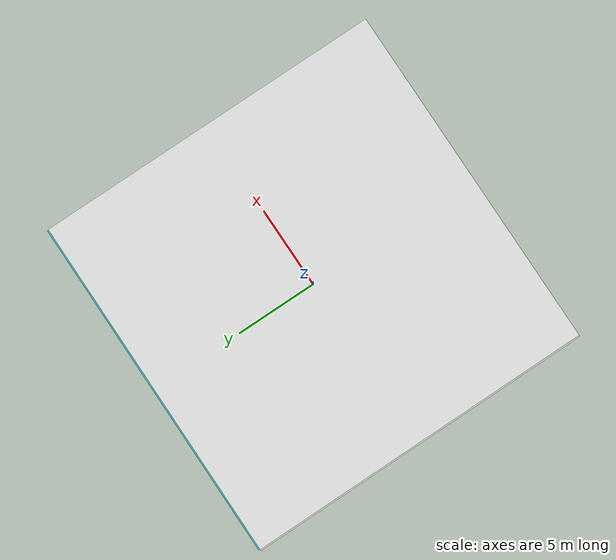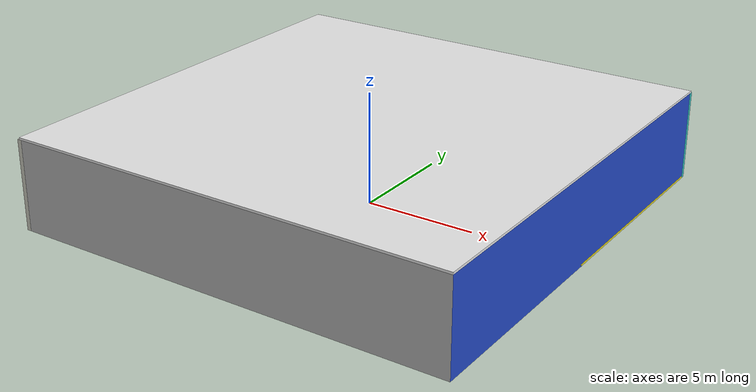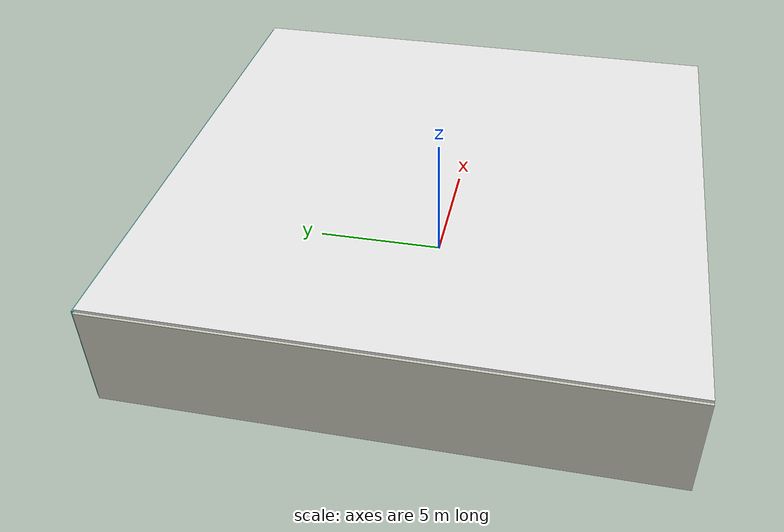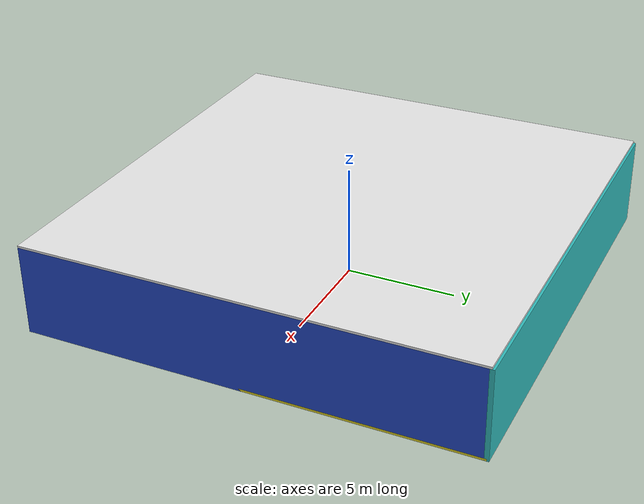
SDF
<sdf version="1.4">
 <world name="default">
  <physics type="ode">
   <max_step_size>0.001</max_step_size>
   <real_time_factor>1</real_time_factor>
   <real_time_update_rate>1000</real_time_update_rate>
   <gravity>0 0 -9.8</gravity>
  </physics>
  <scene><ambient>0.4 0.4 0.4 1</ambient><background>0.7 0.7 0.7 1</background><shadows>1</shadows></scene>
  <model name="Surrounding">
   <static>1</static>
   <link name="Ceiling">
    <collision name="Ceiling_Collision"><geometry><box><size>20 20 0.1</size></box></geometry></collision>
    <visual name="Ceiling_Visual">
     <geometry><box><size>20 20 0.1</size></box></geometry>
     <material>
      <script><uri>file://media/materials/scripts/gazebo.material</uri><name>Gazebo/White</name></script>
     </material>
    </visual>
    <pose>0 0 4.05 0 0 0</pose>
   </link>
   <link name="Wall_South">
    <collision name="Wall_South_Collision">
     <geometry><box><size>20 0 4</size></box></geometry>
     <pose>0 0 2 0 -0 0</pose>
    </collision>
    <visual name="Wall_South_Visual">
     <pose>0 0 2 0 -0 0</pose>
     <geometry><box><size>20 0 4</size></box></geometry>
     <material>
      <script><uri>file://media/materials/scripts/gazebo.material</uri><name>Gazebo/PioneerBody</name></script>
     </material>
    </visual>
    <velocity_decay><linear>0</linear><angular>0</angular></velocity_decay>
    <pose>0 -10 0 0 -0 0</pose>
   </link>
   <link name="Wall_East">
    <collision name="Wall_21_Collision">
     <geometry><box><size>20 0 4</size></box></geometry>
     <pose>0 0 2 0 -0 0</pose>
    </collision>
    <visual name="Wall_21_Visual">
     <pose>0 0 2 0 -0 0</pose>
     <geometry><box><size>20 0 4</size></box></geometry>
     <material>
      <script><uri>file://media/materials/scripts/gazebo.material</uri><name>Gazebo/BlueGlow</name></script>
     </material>
    </visual>
    <velocity_decay><linear>0</linear><angular>0</angular></velocity_decay>
    <pose>10 0 0 0 -0 1.5708</pose>
   </link>
   <link name="Wall_North">
    <collision name="Wall_22_Collision">
     <geometry><box><size>20 0.2 4</size></box></geometry>
     <pose>0 0 2 0 -0 0</pose>
    </collision>
    <visual name="Wall_22_Visual">
     <pose>0 0 2 0 -0 0</pose>
     <geometry><box><size>20 0.2 4</size></box></geometry>
     <material>
      <script><uri>file://media/materials/scripts/gazebo.material</uri><name>Gazebo/TurquoiseGlow</name></script>
     </material>
    </visual>
    <velocity_decay><linear>0</linear><angular>0</angular></velocity_decay>
    <pose>0 10 0 0 -0 0</pose>
   </link>
   <link name="Wall_West">
    <collision name="Wall_23_Collision">
     <geometry><box><size>20 0.2 4</size></box></geometry>
     <pose>0 0 2 0 -0 0</pose>
    </collision>
    <visual name="Wall_23_Visual">
     <pose>0 0 2 0 -0 0</pose>
     <geometry><box><size>20 0.2 4</size></box></geometry>
     <material>
      <script><uri>file://media/materials/scripts/gazebo.material</uri><name>Gazebo/PaintedWall</name></script>
     </material>
    </visual>
    <velocity_decay><linear>0</linear><angular>0</angular></velocity_decay>
    <pose>-10 0 0 0 0 -1.5708</pose>
   </link>
   <link name="Ground_link">
    <collision name="collision">
     <pose>0 0 .05 0 -0 0</pose>
     <geometry><box><size>20 20 0.1</size></box></geometry>
    </collision>
    <visual name="visual">
     <pose>0 0 .05 0 -0 0</pose>
     <geometry><box><size>20 20 0.1</size></box></geometry>
     <material>
      <script><uri>file://media/materials/scripts/gazebo.material</uri><name>Gazebo/Yellow</name></script>
     </material>
    </visual>
   </link>
   <static>1</static>
  </model>
  <spherical_coordinates>
   <surface_model>EARTH_WGS84</surface_model>
   <latitude_deg>0</latitude_deg>
   <longitude_deg>0</longitude_deg>
   <elevation>0</elevation>
   <heading_deg>0</heading_deg>
  </spherical_coordinates>
  <light name="lightball_0" type="diffuse">
   <diffuse>0.8 0.8 0.8 1</diffuse>
   <specular>0.2 0.2 0.2 1</specular>
   <attenuation>
    <range>100</range>
    <constant>0.7</constant>
    <linear>0.01</linear>
    <quadratic>0.001</quadratic>
   </attenuation>
   <direction>-0.5 0.1 -0.9</direction>
   <pose>1.44523436461 8.0069053226 3.54685957813 0 0 0</pose>
  </light>
  <light name="lightball_1" type="diffuse">
   <diffuse>0.8 0.8 0.8 1</diffuse>
   <specular>0.2 0.2 0.2 1</specular>
   <attenuation>
    <range>100</range>
    <constant>0.7</constant>
    <linear>0.01</linear>
    <quadratic>0.001</quadratic>
   </attenuation>
   <direction>-0.5 0.1 -0.9</direction>
   <pose>8.36245207529 -1.42027162541 1.72597116 0 0 0</pose>
  </light>
  <light name="lightball_2" type="diffuse">
   <diffuse>0.8 0.8 0.8 1</diffuse>
   <specular>0.2 0.2 0.2 1</specular>
   <attenuation>
    <range>100</range>
    <constant>0.7</constant>
    <linear>0.01</linear>
    <quadratic>0.001</quadratic>
   </attenuation>
   <direction>-0.5 0.1 -0.9</direction>
   <pose>9.9680349936 5.39792823105 1.04283451986 0 0 0</pose>
  </light>
  <light name="lightball_3" type="diffuse">
   <diffuse>0.8 0.8 0.8 1</diffuse>
   <specular>0.2 0.2 0.2 1</specular>
   <attenuation>
    <range>100</range>
    <constant>0.7</constant>
    <linear>0.01</linear>
    <quadratic>0.001</quadratic>
   </attenuation>
   <direction>-0.5 0.1 -0.9</direction>
   <pose>-2.11821217651 -4.4163224545 1.88847271354 0 0 0</pose>
  </light>
  <light name="lightball_4" type="diffuse">
   <diffuse>0.8 0.8 0.8 1</diffuse>
   <specular>0.2 0.2 0.2 1</specular>
   <attenuation>
    <range>100</range>
    <constant>0.7</constant>
    <linear>0.01</linear>
    <quadratic>0.001</quadratic>
   </attenuation>
   <direction>-0.5 0.1 -0.9</direction>
   <pose>-3.19867495115 8.54343197051 1.68167671241 0 0 0</pose>
  </light>
  <include><uri>model://cabinet</uri><pose>-4.66964171188 -7.23550369621 0 0 0 0.896485616253</pose></include>
  <include>
   <uri>model://construction_cone</uri>
   <pose>2.12373818884 -3.89496860093 0 0 0 1.72544388273</pose>
  </include>
  <include><uri>model://table</uri><pose>4.73302014654 -0.830166006048 0 0 0 1.02184030232</pose></include>
  <include><uri>model://table</uri><pose>4.993992308 6.8252337713 0 0 0 0.0424618504953</pose></include>
  <include><uri>model://table</uri><pose>8.14423889337 -1.06828522332 0 0 0 1.65545597107</pose></include>
 </world>
</sdf>

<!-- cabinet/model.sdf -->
<sdf version="1.5">
  <model name="cabinet">
    <static>true</static>
    <link name="cabinet_bottom_plate">
      <inertial>
        <pose>0 0 -1 0 0 0</pose>
        <inertia>
          <ixx>2.050000</ixx>
          <ixy>0</ixy>
          <ixz>0</ixz>
          <iyy>2.050000</iyy>
          <iyz>0</iyz>
          <izz>2.050000</izz>
        </inertia>
        <mass>25.000000</mass>
      </inertial>
      <collision name="cabinet_bottom_plate_geom">
        <pose>0 0 0.010000 0 0 0</pose>
        <geometry>
          <box>
            <size>0.450000 0.450000 0.020000</size>
          </box>
        </geometry>
      </collision>
      <visual name="cabinet_bottom_plate_geom_visual">
        <pose>0 0 0.010000 0 0 0</pose>
        <geometry>
          <box>
            <size>0.450000 0.450000 0.020000</size>
          </box>
        </geometry>
        <material>
          <script>
            <uri>model://media/materials/scripts/gazebo.material</uri>
            <name>Gazebo/Wood</name>
          </script>
        </material>
      </visual>
      <collision name="cabinet_bottom_plate_geom_cabinet_back_plate">
        <pose>0.235000 0 0.510000 0 0 0</pose>
        <geometry>
          <box>
            <size>0.020000 0.450000 1.020000</size>
          </box>
        </geometry>
      </collision>
      <visual name="cabinet_bottom_plate_geom_cabinet_back_plate_visual">
        <pose>0.235000 0 0.510000 0 0 0</pose>
        <geometry>
          <box>
            <size>0.020000 0.450000 1.020000</size>
          </box>
        </geometry>
        <material>
          <script>
            <uri>model://media/materials/scripts/gazebo.material</uri>
            <name>Gazebo/Wood</name>
          </script>
        </material>
      </visual>
      <collision name="cabinet_bottom_plate_geom_cabinet_left_plate">
        <pose>0 0.235000 0.510000 0 0 0</pose>
        <geometry>
          <box>
            <size>0.450000 0.020000 1.020000</size>
          </box>
        </geometry>
      </collision>
      <visual name="cabinet_bottom_plate_geom_cabinet_left_plate_visual">
        <pose>0 0.235000 0.510000 0 0 0</pose>
        <geometry>
          <box>
            <size>0.450000 0.020000 1.020000</size>
          </box>
        </geometry>
        <material>
          <script>
            <uri>model://media/materials/scripts/gazebo.material</uri>
            <name>Gazebo/Wood</name>
          </script>
        </material>
      </visual>
      <collision name="cabinet_bottom_plate_geom_cabinet_middle_plate">
        <pose>0 0 0.510000 0 0 0</pose>
        <geometry>
          <box>
            <size>0.450000 0.450000 0.020000</size>
          </box>
        </geometry>
      </collision>
      <visual name="cabinet_bottom_plate_geom_cabinet_middle_plate_visual">
        <pose>0 0 0.510000 0 0 0</pose>
        <geometry>
          <box>
            <size>0.450000 0.450000 0.020000</size>
          </box>
        </geometry>
        <material>
          <script>
            <uri>model://media/materials/scripts/gazebo.material</uri>
            <name>Gazebo/Wood</name>
          </script>
        </material>
      </visual>
      <collision name="cabinet_bottom_plate_geom_cabinet_right_plate">
        <pose>0 -0.235000 0.510000 0 0 0</pose>
        <geometry>
          <box>
            <size>0.450000 0.020000 1.020000</size>
          </box>
        </geometry>
      </collision>
      <visual name="cabinet_bottom_plate_geom_cabinet_right_plate_visual">
        <pose>0 -0.235000 0.510000 0 0 0</pose>
        <geometry>
          <box>
            <size>0.450000 0.020000 1.020000</size>
          </box>
        </geometry>
        <material>
          <script>
            <uri>model://media/materials/scripts/gazebo.material</uri>
            <name>Gazebo/Wood</name>
          </script>
        </material>
      </visual>
      <collision name="cabinet_bottom_plate_geom_cabinet_top_plate">
        <pose>0 0 1.010000 0 0 0</pose>
        <geometry>
          <box>
            <size>0.450000 0.450000 0.020000</size>
          </box>
        </geometry>
      </collision>
      <visual name="cabinet_bottom_plate_geom_cabinet_top_plate_visual">
        <pose>0 0 1.010000 0 0 0</pose>
        <geometry>
          <box>
            <size>0.450000 0.450000 0.020000</size>
          </box>
        </geometry>
        <material>
          <script>
            <uri>model://media/materials/scripts/gazebo.material</uri>
            <name>Gazebo/Wood</name>
          </script>
        </material>
      </visual>
    </link>
  </model>
</sdf>

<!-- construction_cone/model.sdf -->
<sdf version="1.5">
  <model name="Construction Cone">
    <link name="link">
      <collision name="collision">
        <geometry>
          <mesh>
            <scale>10 10 10</scale>
            <uri>file://isr-testbed/construction_cone/meshes/construction_cone.dae</uri>
          </mesh>
        </geometry>
      </collision>
      <visual name="visual">
        <geometry>
          <mesh>
            <scale>10 10 10</scale>
            <uri>file://isr-testbed/construction_cone/meshes/construction_cone.dae</uri>
          </mesh>
        </geometry>
      </visual>
    </link>
  </model>
</sdf>

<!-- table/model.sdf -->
<sdf version="1.5">
  <model name="table">
    <static>true</static>
    <link name="link">
      <collision name="surface">
        <pose>0 0 1.0 0 0 0</pose>
        <geometry>
          <box>
            <size>1.5 0.8 0.03</size>
          </box>
        </geometry>
        <surface>
          <friction>
            <ode>
              <mu>0.6</mu>
              <mu2>0.6</mu2>
            </ode>
          </friction>
        </surface>
      </collision>
      <visual name="visual1">
        <pose>0 0 1.0 0 0 0</pose>
        <geometry>
          <box>
            <size>1.5 0.8 0.03</size>
          </box>
        </geometry>
        <material>
          <script>
            <uri>model://media/materials/scripts/gazebo.material</uri>
            <name>Gazebo/Wood</name>
          </script>
        </material>
      </visual>
      <collision name="front_left_leg">
        <pose>0.68 0.38 0.5 0 0 0</pose>
        <geometry>
          <cylinder>
            <radius>0.02</radius>
            <length>1.0</length>
          </cylinder>
        </geometry>
      </collision>
      <visual name="front_left_leg">
        <pose>0.68 0.38 0.5 0 0 0</pose>
        <geometry>
          <cylinder>
            <radius>0.02</radius>
            <length>1.0</length>
          </cylinder>
        </geometry>
        <material>
          <script>
            <uri>model://media/materials/scripts/gazebo.material</uri>
            <name>Gazebo/Grey</name>
          </script>
        </material>
      </visual>
      <collision name="front_right_leg">
        <pose>0.68 -0.38 0.5 0 0 0</pose>
        <geometry>
          <cylinder>
            <radius>0.02</radius>
            <length>1.0</length>
          </cylinder>
        </geometry>
      </collision>
      <visual name="front_right_leg">
        <pose>0.68 -0.38 0.5 0 0 0</pose>
        <geometry>
          <cylinder>
            <radius>0.02</radius>
            <length>1.0</length>
          </cylinder>
        </geometry>
        <material>
          <script>
            <uri>model://media/materials/scripts/gazebo.material</uri>
            <name>Gazebo/Grey</name>
          </script>
        </material>
      </visual>
      <collision name="back_right_leg">
        <pose>-0.68 -0.38 0.5 0 0 0</pose>
        <geometry>
          <cylinder>
            <radius>0.02</radius>
            <length>1.0</length>
          </cylinder>
        </geometry>
      </collision>
      <visual name="back_right_leg">
        <pose>-0.68 -0.38 0.5 0 0 0</pose>
        <geometry>
          <cylinder>
            <radius>0.02</radius>
            <length>1.0</length>
          </cylinder>
        </geometry>
        <material>
          <script>
            <uri>model://media/materials/scripts/gazebo.material</uri>
            <name>Gazebo/Grey</name>
          </script>
        </material>
      </visual>
      <collision name="back_left_leg">
        <pose>-0.68 0.38 0.5 0 0 0</pose>
        <geometry>
          <cylinder>
            <radius>0.02</radius>
            <length>1.0</length>
          </cylinder>
        </geometry>
      </collision>
      <visual name="back_left_leg">
        <pose>-0.68 0.38 0.5 0 0 0</pose>
        <geometry>
          <cylinder>
            <radius>0.02</radius>
            <length>1.0</length>
          </cylinder>
        </geometry>
        <material>
          <script>
            <uri>model://media/materials/scripts/gazebo.material</uri>
            <name>Gazebo/Grey</name>
          </script>
        </material>
      </visual>
    </link>
  </model>
</sdf>
